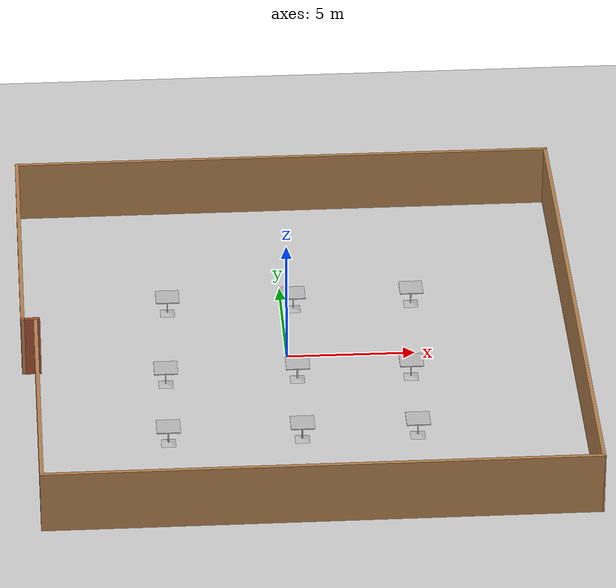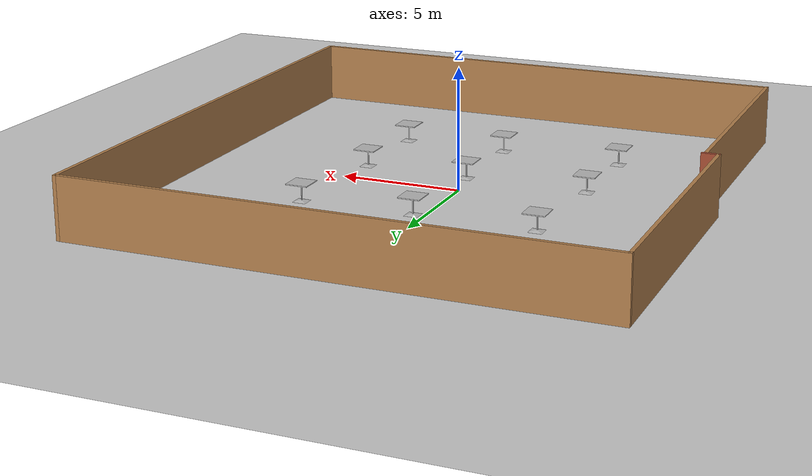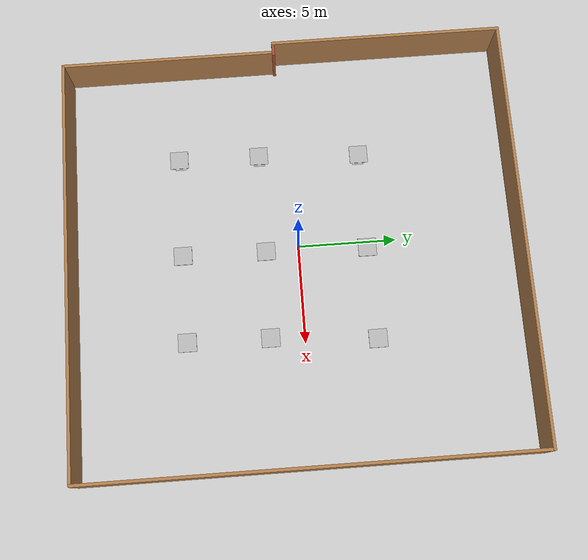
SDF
<sdf version="1.7">
 <world name="default">
  <light name="sun" type="directional">
   <pose>0 0 10 0 -0 0</pose>
   <diffuse>0.8 0.8 0.8 1</diffuse>
   <specular>0.2 0.2 0.2 1</specular>
   <attenuation>
    <range>1000</range>
    <constant>0.9</constant>
    <linear>0.01</linear>
    <quadratic>0.001</quadratic>
   </attenuation>
   <direction>-0.5 0.1 -0.9</direction>
   <spot><inner_angle>0</inner_angle><outer_angle>0</outer_angle><falloff>0</falloff></spot>
  </light>
  <model name="ground_plane">
   <static>1</static>
   <link name="link">
    <collision name="collision">
     <geometry><plane><normal>0 0 1</normal><size>100 100</size></plane></geometry>
     <surface><friction><ode><mu>100</mu><mu2>50</mu2></ode></friction></surface>
    </collision>
    <visual name="visual">
     <cast_shadows>0</cast_shadows>
     <geometry><plane><normal>0 0 1</normal><size>100 100</size></plane></geometry>
     <material>
      <script><uri>file://media/materials/scripts/gazebo.material</uri><name>Gazebo/Grey</name></script>
     </material>
    </visual>
   </link>
  </model>
  <gravity>0 0 -9.8</gravity>
  <magnetic_field>6e-06 2.3e-05 -4.2e-05</magnetic_field>
  <atmosphere type="adiabatic"/>
  <physics type="ode">
   <max_step_size>0.001</max_step_size>
   <real_time_factor>1</real_time_factor>
   <real_time_update_rate>1000</real_time_update_rate>
  </physics>
  <scene><ambient>0.4 0.4 0.4 1</ambient><background>0.7 0.7 0.7 1</background><shadows>1</shadows></scene>
  <audio><device>default</device></audio>
  <spherical_coordinates>
   <surface_model>EARTH_WGS84</surface_model>
   <latitude_deg>0</latitude_deg>
   <longitude_deg>0</longitude_deg>
   <elevation>0</elevation>
   <heading_deg>0</heading_deg>
  </spherical_coordinates>
  <model name="cafe_table">
   <static>1</static>
   <link name="link">
    <collision name="surface">
     <pose>0 0 0.755 0 -0 0</pose>
     <geometry><box><size>0.913 0.913 0.04</size></box></geometry>
    </collision>
    <collision name="column">
     <pose>0 0 0.37 0 -0 0</pose>
     <geometry><box><size>0.042 0.042 0.74</size></box></geometry>
    </collision>
    <collision name="base">
     <pose>0 0 0.02 0 -0 0</pose>
     <geometry><box><size>0.56 0.56 0.04</size></box></geometry>
    </collision>
    <visual name="visual">
     <geometry><mesh><uri>model://cafe_table/meshes/cafe_table.dae</uri></mesh></geometry>
    </visual>
   </link>
   <pose>-4.50192 3.43208 0 0 -0 0</pose>
  </model>
  <model name="cafe_table_0">
   <static>1</static>
   <link name="link">
    <collision name="surface">
     <pose>0 0 0.755 0 -0 0</pose>
     <geometry><box><size>0.913 0.913 0.04</size></box></geometry>
    </collision>
    <collision name="column">
     <pose>0 0 0.37 0 -0 0</pose>
     <geometry><box><size>0.042 0.042 0.74</size></box></geometry>
    </collision>
    <collision name="base">
     <pose>0 0 0.02 0 -0 0</pose>
     <geometry><box><size>0.56 0.56 0.04</size></box></geometry>
    </collision>
    <visual name="visual">
     <geometry><mesh><uri>model://cafe_table/meshes/cafe_table.dae</uri></mesh></geometry>
    </visual>
   </link>
   <pose>0.465287 3.44581 0 0 -0 0</pose>
  </model>
  <model name="cafe_table_1">
   <static>1</static>
   <link name="link">
    <collision name="surface">
     <pose>0 0 0.755 0 -0 0</pose>
     <geometry><box><size>0.913 0.913 0.04</size></box></geometry>
    </collision>
    <collision name="column">
     <pose>0 0 0.37 0 -0 0</pose>
     <geometry><box><size>0.042 0.042 0.74</size></box></geometry>
    </collision>
    <collision name="base">
     <pose>0 0 0.02 0 -0 0</pose>
     <geometry><box><size>0.56 0.56 0.04</size></box></geometry>
    </collision>
    <visual name="visual">
     <geometry><mesh><uri>model://cafe_table/meshes/cafe_table.dae</uri></mesh></geometry>
    </visual>
   </link>
   <pose>5.1201 3.56271 0 0 -0 0</pose>
  </model>
  <model name="cafe_table_2">
   <static>1</static>
   <link name="link">
    <collision name="surface">
     <pose>0 0 0.755 0 -0 0</pose>
     <geometry><box><size>0.913 0.913 0.04</size></box></geometry>
    </collision>
    <collision name="column">
     <pose>0 0 0.37 0 -0 0</pose>
     <geometry><box><size>0.042 0.042 0.74</size></box></geometry>
    </collision>
    <collision name="base">
     <pose>0 0 0.02 0 -0 0</pose>
     <geometry><box><size>0.56 0.56 0.04</size></box></geometry>
    </collision>
    <visual name="visual">
     <geometry><mesh><uri>model://cafe_table/meshes/cafe_table.dae</uri></mesh></geometry>
    </visual>
   </link>
   <pose>-4.77427 -1.69598 0 0 -0 0</pose>
  </model>
  <model name="cafe_table_3">
   <static>1</static>
   <link name="link">
    <collision name="surface">
     <pose>0 0 0.755 0 -0 0</pose>
     <geometry><box><size>0.913 0.913 0.04</size></box></geometry>
    </collision>
    <collision name="column">
     <pose>0 0 0.37 0 -0 0</pose>
     <geometry><box><size>0.042 0.042 0.74</size></box></geometry>
    </collision>
    <collision name="base">
     <pose>0 0 0.02 0 -0 0</pose>
     <geometry><box><size>0.56 0.56 0.04</size></box></geometry>
    </collision>
    <visual name="visual">
     <geometry><mesh><uri>model://cafe_table/meshes/cafe_table.dae</uri></mesh></geometry>
    </visual>
   </link>
   <pose>0.31852 -1.64439 0 0 -0 0</pose>
  </model>
  <model name="cafe_table_4">
   <static>1</static>
   <link name="link">
    <collision name="surface">
     <pose>0 0 0.755 0 -0 0</pose>
     <geometry><box><size>0.913 0.913 0.04</size></box></geometry>
    </collision>
    <collision name="column">
     <pose>0 0 0.37 0 -0 0</pose>
     <geometry><box><size>0.042 0.042 0.74</size></box></geometry>
    </collision>
    <collision name="base">
     <pose>0 0 0.02 0 -0 0</pose>
     <geometry><box><size>0.56 0.56 0.04</size></box></geometry>
    </collision>
    <visual name="visual">
     <geometry><mesh><uri>model://cafe_table/meshes/cafe_table.dae</uri></mesh></geometry>
    </visual>
   </link>
   <pose>4.72319 -1.71183 0 0 -0 0</pose>
  </model>
  <model name="cafe_table_5">
   <static>1</static>
   <link name="link">
    <collision name="surface">
     <pose>0 0 0.755 0 -0 0</pose>
     <geometry><box><size>0.913 0.913 0.04</size></box></geometry>
    </collision>
    <collision name="column">
     <pose>0 0 0.37 0 -0 0</pose>
     <geometry><box><size>0.042 0.042 0.74</size></box></geometry>
    </collision>
    <collision name="base">
     <pose>0 0 0.02 0 -0 0</pose>
     <geometry><box><size>0.56 0.56 0.04</size></box></geometry>
    </collision>
    <visual name="visual">
     <geometry><mesh><uri>model://cafe_table/meshes/cafe_table.dae</uri></mesh></geometry>
    </visual>
   </link>
   <pose>-4.8399 -5.79517 0 0 -0 0</pose>
  </model>
  <model name="cafe_table_6">
   <static>1</static>
   <link name="link">
    <collision name="surface">
     <pose>0 0 0.755 0 -0 0</pose>
     <geometry><box><size>0.913 0.913 0.04</size></box></geometry>
    </collision>
    <collision name="column">
     <pose>0 0 0.37 0 -0 0</pose>
     <geometry><box><size>0.042 0.042 0.74</size></box></geometry>
    </collision>
    <collision name="base">
     <pose>0 0 0.02 0 -0 0</pose>
     <geometry><box><size>0.56 0.56 0.04</size></box></geometry>
    </collision>
    <visual name="visual">
     <geometry><mesh><uri>model://cafe_table/meshes/cafe_table.dae</uri></mesh></geometry>
    </visual>
   </link>
   <pose>0.25634 -5.82907 0 0 -0 0</pose>
  </model>
  <model name="cafe_table_7">
   <static>1</static>
   <link name="link">
    <collision name="surface">
     <pose>0 0 0.755 0 -0 0</pose>
     <geometry><box><size>0.913 0.913 0.04</size></box></geometry>
    </collision>
    <collision name="column">
     <pose>0 0 0.37 0 -0 0</pose>
     <geometry><box><size>0.042 0.042 0.74</size></box></geometry>
    </collision>
    <collision name="base">
     <pose>0 0 0.02 0 -0 0</pose>
     <geometry><box><size>0.56 0.56 0.04</size></box></geometry>
    </collision>
    <visual name="visual">
     <geometry><mesh><uri>model://cafe_table/meshes/cafe_table.dae</uri></mesh></geometry>
    </visual>
   </link>
   <pose>4.66106 -5.81166 0 0 -0 0</pose>
  </model>
  <model name="Untitled">
   <pose>0.452875 -0.140683 0 0 -0 0</pose>
   <link name="Wall_0">
    <collision name="Wall_0_Collision">
     <geometry><box><size>10.75 0.15 2.5</size></box></geometry>
     <pose>0 0 1.25 0 -0 0</pose>
    </collision>
    <visual name="Wall_0_Visual">
     <pose>0 0 1.25 0 -0 0</pose>
     <geometry><box><size>10.75 0.15 2.5</size></box></geometry>
     <material>
      <script><uri>file://media/materials/scripts/gazebo.material</uri><name>Gazebo/Wood</name></script>
      <ambient>1 1 1 1</ambient>
     </material>
     <meta><layer>0</layer></meta>
    </visual>
    <pose>-10.175 -5.875 0 0 -0 -1.5708</pose>
   </link>
   <link name="Wall_1">
    <collision name="Wall_1_Collision">
     <geometry><box><size>21 0.15 2.5</size></box></geometry>
     <pose>0 0 1.25 0 -0 0</pose>
    </collision>
    <visual name="Wall_1_Visual">
     <pose>0 0 1.25 0 -0 0</pose>
     <geometry><box><size>21 0.15 2.5</size></box></geometry>
     <material>
      <script><uri>file://media/materials/scripts/gazebo.material</uri><name>Gazebo/Wood</name></script>
      <ambient>1 1 1 1</ambient>
     </material>
     <meta><layer>0</layer></meta>
    </visual>
    <pose>0.25 -11.175 0 0 -0 0</pose>
   </link>
   <link name="Wall_2">
    <collision name="Wall_2_Collision">
     <geometry><box><size>22.5 0.15 2.5</size></box></geometry>
     <pose>0 0 1.25 0 -0 0</pose>
    </collision>
    <visual name="Wall_2_Visual">
     <pose>0 0 1.25 0 -0 0</pose>
     <geometry><box><size>22.5 0.15 2.5</size></box></geometry>
     <material>
      <script><uri>file://media/materials/scripts/gazebo.material</uri><name>Gazebo/Wood</name></script>
      <ambient>1 1 1 1</ambient>
     </material>
     <meta><layer>0</layer></meta>
    </visual>
    <pose>10.675 -0 0 0 -0 1.5708</pose>
   </link>
   <link name="Wall_5">
    <collision name="Wall_5_Collision">
     <geometry><box><size>21.5 0.15 2.5</size></box></geometry>
     <pose>0 0 1.25 0 -0 0</pose>
    </collision>
    <visual name="Wall_5_Visual">
     <pose>0 0 1.25 0 -0 0</pose>
     <geometry><box><size>21.5 0.15 2.5</size></box></geometry>
     <material>
      <script><uri>file://media/materials/scripts/gazebo.material</uri><name>Gazebo/Wood</name></script>
      <ambient>1 1 1 1</ambient>
     </material>
     <meta><layer>0</layer></meta>
    </visual>
    <pose>-0 11.175 0 0 -0 3.14159</pose>
   </link>
   <link name="Wall_6">
    <collision name="Wall_6_Collision">
     <geometry><box><size>11.75 0.15 2.5</size></box></geometry>
     <pose>0 0 1.25 0 -0 0</pose>
    </collision>
    <visual name="Wall_6_Visual">
     <pose>0 0 1.25 0 -0 0</pose>
     <geometry><box><size>11.75 0.15 2.5</size></box></geometry>
     <material>
      <script><uri>file://media/materials/scripts/gazebo.material</uri><name>Gazebo/Wood</name></script>
      <ambient>1 1 1 1</ambient>
     </material>
     <meta><layer>0</layer></meta>
    </visual>
    <pose>-10.675 5.375 0 0 -0 -1.5708</pose>
   </link>
   <link name="Wall_7">
    <collision name="Wall_7_Collision">
     <geometry><box><size>0.75 0.15 2.5</size></box></geometry>
     <pose>0 0 1.25 0 -0 0</pose>
    </collision>
    <visual name="Wall_7_Visual">
     <pose>0 0 1.25 0 -0 0</pose>
     <geometry><box><size>0.75 0.15 2.5</size></box></geometry>
     <material>
      <script><uri>file://media/materials/scripts/gazebo.material</uri><name>Gazebo/Bricks</name></script>
      <ambient>1 1 1 1</ambient>
     </material>
     <meta><layer>0</layer></meta>
    </visual>
    <pose>-10.375 -0.425 0 0 -0 0</pose>
   </link>
   <static>1</static>
  </model>
 </world>
</sdf>
